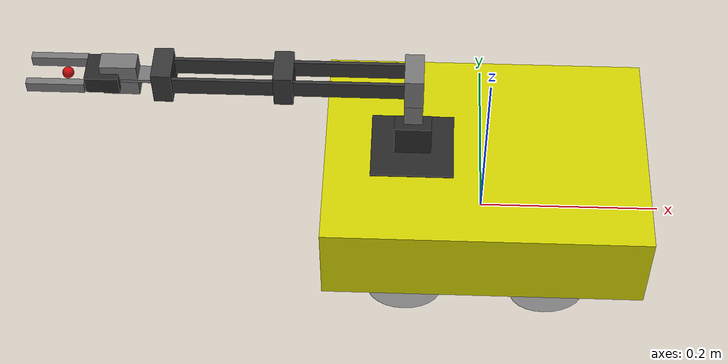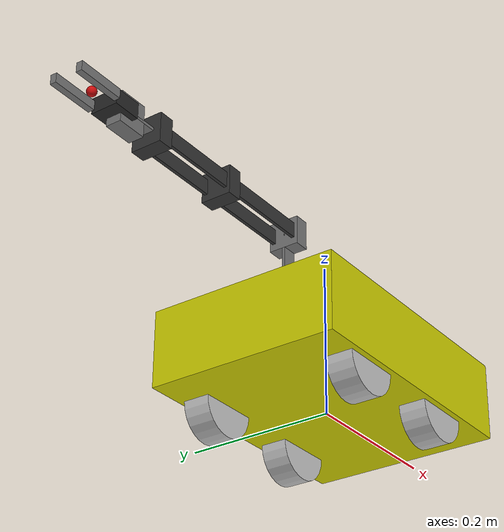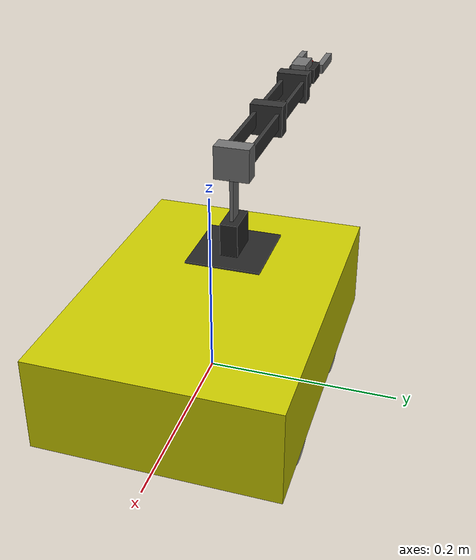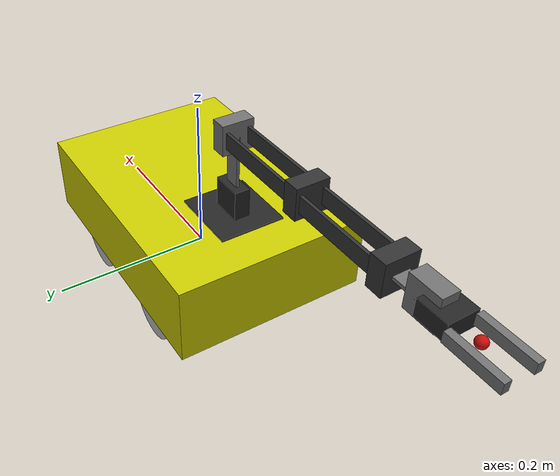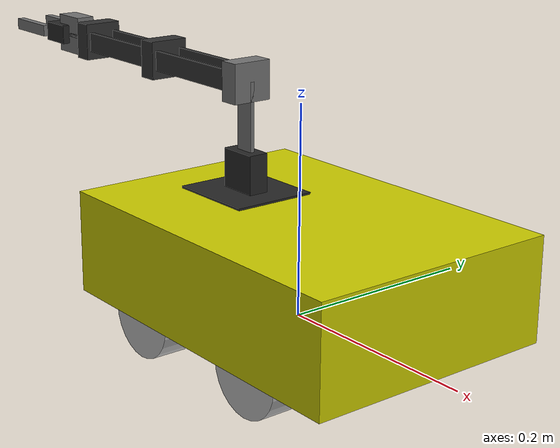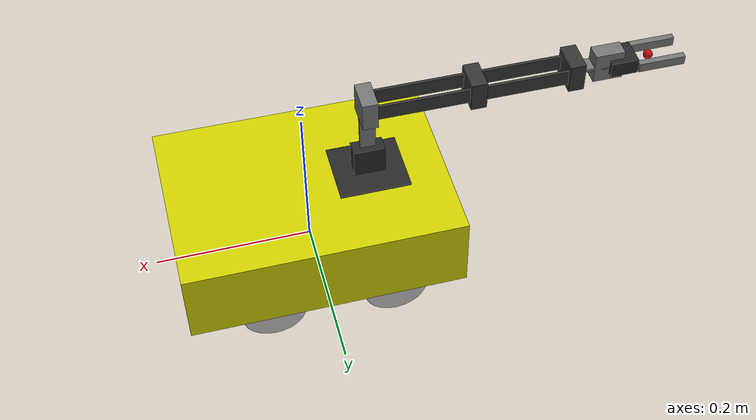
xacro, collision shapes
<?xml version="1.0"?>
<robot xmlns:xacro="http://ros.org/wiki/xacro" name="rubot_mecanum">

    <!-- ros2_control arguments -->
    <xacro:arg name="use_gazebo_plugin" default="true"/>
    <xacro:arg name="hardware_plugin" default="ign_ros2_control/IgnitionSystem"/>
    <xacro:arg name="ros2_control_params" default=""/>

  <xacro:include filename="$(find my_robot_description)/urdf/rubot_arm/my_arm_mecanum_5dof_macro.xacro"/>

  <xacro:my_arm_mecanum_5dof
    prefix="arm_"
    parent="base_link"
    xyz="-0.08 0.0 0.09"
    rpy="0 0 3.14159"
    hardware_plugin="$(arg hardware_plugin)"/>

    <material name="yellow">
        <color rgba="0.8 0.8 0.0 1.0"/>
    </material>
    <material name="black">
        <color rgba="0.15 0.15 0.15 1.0"/>
    </material>
    <material name="dark_grey">
        <color rgba="0.2 0.2 0.2 1.0"/>
    </material>
    <material name="light_grey">
        <color rgba="0.75 0.75 0.75 1.0"/>
    </material>
    <material name="green">
        <color rgba="0.2 0.7 0.2 1.0"/>
    </material>
    <material name="servo">
      <color rgba="0.08 0.08 0.08 1.0"/>
    </material>

    <material name="metal">
      <color rgba="0.45 0.45 0.45 1.0"/>
    </material>

    <material name="red">
      <color rgba="0.80 0.05 0.05 1.0"/>
    </material>

  <!-- ===== Frames base ===== -->
  <link name="base_footprint"/>

  <link name="base_link">
    <!-- Visual (per RViz) -->
    <visual>
      <origin xyz="0 0 0" rpy="0 0 0"/>
      <geometry>
        <mesh filename="package://my_robot_description/meshes/rubot/base_link.stl"
              scale="0.001 0.001 0.001"/>
      </geometry>
      <material name="yellow"/>
    </visual>

    <!-- Collision (per costmaps si vols usar robot footprint/voxel amb robot model) -->
    <collision>
      <origin xyz="0 0 0.05" rpy="0 0 0"/>
      <geometry>
        <box size="0.35 0.25 0.10"/>
      </geometry>
    </collision>
    <!-- Needed Inertia -->
    <inertial>
        <origin xyz="0 0 0.02" rpy="0 0 0"/>
        <mass value="3.0"/>
        <inertia
            ixx="0.03"
            ixy="0.0"
            ixz="0.0"
            iyy="0.08"
            iyz="0.0"
            izz="0.05"/>
    </inertial>
  </link>

  <joint name="base_footprint_joint" type="fixed">
    <parent link="base_footprint"/>
    <child link="base_link"/>
    <origin xyz="0 0 0" rpy="0 0 0"/>
  </joint>

  <!-- ===== Rodes (només visuals, fixed) ===== -->
  <joint name="upper_left_wheel_joint" type="fixed">
    <parent link="base_link"/>
    <child link="upper_left_wheel"/>
    <origin xyz="0.07 0.10 0.00" rpy="0 0 0"/>
  </joint>
  <link name="upper_left_wheel">
    <visual>
      <geometry>
        <mesh filename="package://my_robot_description/meshes/rubot/upper_left_wheel.stl"
              scale="0.001 0.001 0.001"/>
      </geometry>
      <material name="light_grey"/>
    </visual>
    <collision>
        <origin xyz="0 0 0" rpy="1.5708 0 0"/>
        <geometry>
            <cylinder radius="0.04" length="0.035"/>
        </geometry>
    </collision>
    <inertial>
        <mass value="0.05"/>
        <inertia
            ixx="0.00003"
            ixy="0.0"
            ixz="0.0"
            iyy="0.00003"
            iyz="0.0"
            izz="0.00004"/>
    </inertial>
  </link>

  <joint name="lower_left_wheel_joint" type="fixed">
    <parent link="base_link"/>
    <child link="lower_left_wheel"/>
    <origin xyz="-0.085 0.10 0.00" rpy="0 0 0"/>
  </joint>
  <link name="lower_left_wheel">
    <visual>
      <geometry>
        <mesh filename="package://my_robot_description/meshes/rubot/lower_left_wheel.stl"
              scale="0.001 0.001 0.001"/>
      </geometry>
      <material name="light_grey"/>
    </visual>
    <collision>
        <origin xyz="0 0 0" rpy="1.5708 0 0"/>
        <geometry>
            <cylinder radius="0.04" length="0.035"/>
        </geometry>
    </collision>
    <inertial>
        <mass value="0.05"/>
        <inertia
            ixx="0.00003"
            ixy="0.0"
            ixz="0.0"
            iyy="0.00003"
            iyz="0.0"
            izz="0.00004"/>
    </inertial>
  </link>

  <joint name="upper_right_wheel_joint" type="fixed">
    <parent link="base_link"/>
    <child link="upper_right_wheel"/>
    <origin xyz="0.07 -0.10 0.00" rpy="0 0 3.14159"/>
  </joint>
  <link name="upper_right_wheel">
    <visual>
      <geometry>
        <mesh filename="package://my_robot_description/meshes/rubot/upper_right_wheel.stl"
              scale="0.001 0.001 0.001"/>
      </geometry>
      <material name="light_grey"/>
    </visual>
    <collision>
        <origin xyz="0 0 0" rpy="1.5708 0 0"/>
        <geometry>
            <cylinder radius="0.04" length="0.035"/>
        </geometry>
    </collision>
    <inertial>
        <mass value="0.05"/>
        <inertia
            ixx="0.00003"
            ixy="0.0"
            ixz="0.0"
            iyy="0.00003"
            iyz="0.0"
            izz="0.00004"/>
    </inertial>
  </link>

  <joint name="lower_right_wheel_joint" type="fixed">
    <parent link="base_link"/>
    <child link="lower_right_wheel"/>
    <origin xyz="-0.085 -0.10 0.00" rpy="0 0 3.14159"/>
  </joint>
  <link name="lower_right_wheel">
    <visual>
      <geometry>
        <mesh filename="package://my_robot_description/meshes/rubot/lower_right_wheel.stl"
              scale="0.001 0.001 0.001"/>
      </geometry>
      <material name="light_grey"/>
    </visual>
    <collision>
        <origin xyz="0 0 0" rpy="1.5708 0 0"/>
        <geometry>
            <cylinder radius="0.04" length="0.035"/>
        </geometry>
    </collision>
    <inertial>
        <mass value="0.05"/>
        <inertia
            ixx="0.00003"
            ixy="0.0"
            ixz="0.0"
            iyy="0.00003"
            iyz="0.0"
            izz="0.00004"/>
    </inertial>
  </link>

  <!-- ===== Lidar frame ===== -->
  <joint name="base_scan_joint" type="fixed">
    <parent link="base_link"/>
    <child link="base_scan"/>
    <origin xyz="0 0 0.14" rpy="0 0 0"/>
  </joint>
  <link name="base_scan">
    <visual>
      <origin rpy="0 0 0" xyz="0 0 0"/>
      <geometry>
        <mesh filename="package://my_robot_description/meshes/rubot/Lidar.stl" scale="0.001 0.001 0.001"/>
      </geometry>
      <material name="black"/>
    </visual>
  </link>

  <!-- ===== Camera frame ===== -->
  <joint name="camera_joint" type="fixed">
    <parent link="base_link"/>
    <child link="camera"/>
    <origin xyz="0.13 0 0.08" rpy="0 0 0"/>
  </joint>
  <link name="camera">
    <visual>
        <origin rpy="0 0 0" xyz="0 0 0"/>
        <geometry>
            <box size="0.025 0.05 0.025"/>
        </geometry>
        <material name="green"/>
    </visual>
  </link>

    <!-- =========================
        Gazebo plugins
        ========================= -->

    <gazebo>
    <!-- Holonomic / planar velocity control -->
    <plugin filename="libignition-gazebo6-velocity-control-system.so"
            name="ignition::gazebo::systems::VelocityControl">
        <topic>/cmd_vel</topic>
    </plugin>

    <!-- Odometry publisher -->
    <plugin filename="libignition-gazebo6-odometry-publisher-system.so"
            name="ignition::gazebo::systems::OdometryPublisher">
        <odom_frame>odom</odom_frame>
        <robot_base_frame>base_footprint</robot_base_frame>
        <odom_topic>/odom</odom_topic>
        <tf_topic>/tf</tf_topic>
        <odom_publish_frequency>50</odom_publish_frequency>
    </plugin>
    </gazebo>

    <!-- =========================
     Gazebo lidar sensor
     ========================= -->
    <gazebo reference="base_scan">
        <sensor name="lidar" type="gpu_lidar">
            <pose>0 0 0 0 0 0</pose>
            <topic>/scan</topic>
            <update_rate>10</update_rate>
            <ray>
            <scan>
                <horizontal>
                <samples>360</samples>
                <resolution>1</resolution>
                <min_angle>-2.3</min_angle>
                <max_angle>2.3</max_angle>
                </horizontal>
            </scan>
            <range>
                <min>0.12</min>
                <max>10.0</max>
                <resolution>0.01</resolution>
            </range>
            </ray>
            <always_on>true</always_on>
            <visualize>false</visualize>
        </sensor>
    </gazebo>

    <!-- =========================
        Gazebo RGBD camera sensor
        ========================= -->
    <gazebo reference="camera">
        <sensor name="rgbd_camera" type="rgbd_camera">
            <pose>0 0 0 0 0 0</pose>
            <topic>/camera</topic>
            <update_rate>15</update_rate>
            <camera>
            <horizontal_fov>1.047</horizontal_fov>
            <image>
                <width>320</width>
                <height>240</height>
                <format>R8G8B8</format>
            </image>
            <clip>
                <near>0.05</near>
                <far>10.0</far>
            </clip>
            </camera>
            <always_on>true</always_on>
            <visualize>false</visualize>
        </sensor>
    </gazebo>

    <xacro:if value="$(arg use_gazebo_plugin)">
        <gazebo>
            <plugin
            name="ign_ros2_control::IgnitionROS2ControlPlugin"
            filename="libign_ros2_control-system.so">
            <parameters>$(arg ros2_control_params)</parameters>
            </plugin>
        </gazebo>
    </xacro:if>
</robot>

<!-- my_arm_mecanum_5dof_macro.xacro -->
<robot xmlns:xacro="http://ros.org/wiki/xacro">

  <!-- Reusable helper macros                                            -->

  <xacro:macro name="arm_inertial_box" params="mass x y z ox:=0 oy:=0 oz:=0">
    <inertial>
      <origin xyz="${ox} ${oy} ${oz}" rpy="0 0 0"/>
      <mass value="${mass}"/>
      <inertia
        ixx="${mass * (y*y + z*z) / 12.0}"
        ixy="0.0"
        ixz="0.0"
        iyy="${mass * (x*x + z*z) / 12.0}"
        iyz="0.0"
        izz="${mass * (x*x + y*y) / 12.0}"/>
    </inertial>
  </xacro:macro>

  <xacro:macro
    name="arm_box_visual_collision"
    params="name x y z ox oy oz material">

    <visual name="${name}_visual">
      <origin xyz="${ox} ${oy} ${oz}" rpy="0 0 0"/>
      <geometry>
        <box size="${x} ${y} ${z}"/>
      </geometry>
      <material name="${material}"/>
    </visual>

    <collision name="${name}_collision">
      <origin xyz="${ox} ${oy} ${oz}" rpy="0 0 0"/>
      <geometry>
        <box size="${x} ${y} ${z}"/>
      </geometry>
    </collision>
  </xacro:macro>

  <!-- Arm macro                                                         -->

  <xacro:macro
    name="my_arm_mecanum_5dof"
    params="
      prefix
      parent
      xyz:='0 0 0'
      rpy:='0 0 0'
      hardware_plugin:='fake_components/GenericSystem'
    ">

    <!-- Main dimensions -->
    <xacro:property name="base_x" value="0.090"/>
    <xacro:property name="base_y" value="0.084"/>
    <xacro:property name="base_z" value="0.012"/>

    <xacro:property name="L1" value="0.105"/>
    <xacro:property name="L2" value="0.135"/>
    <xacro:property name="L3" value="0.125"/>
    <xacro:property name="L4" value="0.045"/>
    <xacro:property name="tool_x" value="0.055"/>

    <!-- Visual dimensions -->
    <xacro:property name="servo_x" value="0.040"/>
    <xacro:property name="servo_y" value="0.020"/>
    <xacro:property name="servo_z" value="0.038"/>
    <xacro:property name="plate_t" value="0.004"/>
    <xacro:property name="link_w" value="0.020"/>
    <xacro:property name="finger_l" value="0.060"/>

    <!-- Mount the arm on the robot -->
    <joint name="${prefix}mount_joint" type="fixed">
      <parent link="${parent}"/>
      <child link="${prefix}base_link"/>
      <origin xyz="${xyz}" rpy="${rpy}"/>
    </joint>

    <!-- Links                                                          -->

    <link name="${prefix}base_link">
      <xacro:arm_box_visual_collision
        name="${prefix}base_plate"
        x="${base_x}"
        y="${base_y}"
        z="${base_z}"
        ox="0"
        oy="0"
        oz="${base_z / 2.0}"
        material="black"/>

      <visual name="${prefix}base_servo_visual">
        <origin xyz="0 0 ${base_z + servo_z / 2.0}" rpy="0 0 0"/>
        <geometry>
          <box size="${servo_x} ${servo_y} ${servo_z}"/>
        </geometry>
        <material name="servo"/>
      </visual>

      <collision name="${prefix}base_servo_collision">
        <origin xyz="0 0 ${base_z + servo_z / 2.0}" rpy="0 0 0"/>
        <geometry>
          <box size="${servo_x} ${servo_y} ${servo_z}"/>
        </geometry>
      </collision>

      <xacro:arm_inertial_box
        mass="0.18"
        x="${base_x}"
        y="${base_y}"
        z="${base_z}"
        ox="0"
        oy="0"
        oz="${base_z / 2.0}"/>
    </link>

    <link name="${prefix}link1">
      <xacro:arm_box_visual_collision
        name="${prefix}vertical_bracket"
        x="${link_w}"
        y="${plate_t}"
        z="${L1}"
        ox="0"
        oy="0"
        oz="${L1 / 2.0}"
        material="metal"/>

      <visual name="${prefix}shoulder_servo_visual">
        <origin xyz="0 0 ${L1}" rpy="0 0 0"/>
        <geometry>
          <box size="${servo_y} ${servo_x} ${servo_z}"/>
        </geometry>
        <material name="servo"/>
      </visual>

      <collision name="${prefix}shoulder_servo_collision">
        <origin xyz="0 0 ${L1}" rpy="0 0 0"/>
        <geometry>
          <box size="${servo_y} ${servo_x} ${servo_z}"/>
        </geometry>
      </collision>

      <xacro:arm_inertial_box
        mass="0.08"
        x="${link_w}"
        y="${plate_t}"
        z="${L1}"
        ox="0"
        oy="0"
        oz="${L1 / 2.0}"/>
    </link>

    <link name="${prefix}link2">
      <xacro:arm_box_visual_collision
        name="${prefix}upper_left_plate"
        x="${L2}"
        y="${plate_t}"
        z="${link_w}"
        ox="${L2 / 2.0}"
        oy="0.014"
        oz="0"
        material="dark_grey"/>

      <xacro:arm_box_visual_collision
        name="${prefix}upper_right_plate"
        x="${L2}"
        y="${plate_t}"
        z="${link_w}"
        ox="${L2 / 2.0}"
        oy="-0.014"
        oz="0"
        material="dark_grey"/>

      <visual name="${prefix}elbow_servo_visual">
        <origin xyz="${L2} 0 0" rpy="0 0 0"/>
        <geometry>
          <box size="${servo_y} ${servo_x} ${servo_z}"/>
        </geometry>
        <material name="servo"/>
      </visual>

      <collision name="${prefix}elbow_servo_collision">
        <origin xyz="${L2} 0 0" rpy="0 0 0"/>
        <geometry>
          <box size="${servo_y} ${servo_x} ${servo_z}"/>
        </geometry>
      </collision>

      <xacro:arm_inertial_box
        mass="0.09"
        x="${L2}"
        y="0.032"
        z="${link_w}"
        ox="${L2 / 2.0}"
        oy="0"
        oz="0"/>
    </link>

    <link name="${prefix}link3">
      <xacro:arm_box_visual_collision
        name="${prefix}forearm_left_plate"
        x="${L3}"
        y="${plate_t}"
        z="${link_w}"
        ox="${L3 / 2.0}"
        oy="0.014"
        oz="0"
        material="dark_grey"/>

      <xacro:arm_box_visual_collision
        name="${prefix}forearm_right_plate"
        x="${L3}"
        y="${plate_t}"
        z="${link_w}"
        ox="${L3 / 2.0}"
        oy="-0.014"
        oz="0"
        material="dark_grey"/>

      <visual name="${prefix}wrist_pitch_servo_visual">
        <origin xyz="${L3} 0 0" rpy="0 0 0"/>
        <geometry>
          <box size="${servo_y} ${servo_x} ${servo_z}"/>
        </geometry>
        <material name="servo"/>
      </visual>

      <collision name="${prefix}wrist_pitch_servo_collision">
        <origin xyz="${L3} 0 0" rpy="0 0 0"/>
        <geometry>
          <box size="${servo_y} ${servo_x} ${servo_z}"/>
        </geometry>
      </collision>

      <xacro:arm_inertial_box
        mass="0.08"
        x="${L3}"
        y="0.032"
        z="${link_w}"
        ox="${L3 / 2.0}"
        oy="0"
        oz="0"/>
    </link>

    <link name="${prefix}link4">
      <xacro:arm_box_visual_collision
        name="${prefix}wrist_support"
        x="${L4}"
        y="${link_w}"
        z="${plate_t}"
        ox="${L4 / 2.0}"
        oy="0"
        oz="0"
        material="metal"/>

      <visual name="${prefix}wrist_roll_servo_visual">
        <origin xyz="${L4} 0 0" rpy="0 0 0"/>
        <geometry>
          <box size="${servo_z} ${servo_y} ${servo_x}"/>
        </geometry>
        <material name="servo"/>
      </visual>

      <collision name="${prefix}wrist_roll_servo_collision">
        <origin xyz="${L4} 0 0" rpy="0 0 0"/>
        <geometry>
          <box size="${servo_z} ${servo_y} ${servo_x}"/>
        </geometry>
      </collision>

      <xacro:arm_inertial_box
        mass="0.05"
        x="${L4}"
        y="${link_w}"
        z="${plate_t}"
        ox="${L4 / 2.0}"
        oy="0"
        oz="0"/>
    </link>

    <link name="${prefix}link5">
      <xacro:arm_box_visual_collision
        name="${prefix}gripper_palm"
        x="0.035"
        y="0.035"
        z="0.020"
        ox="0.0175"
        oy="0"
        oz="0"
        material="black"/>

      <xacro:arm_inertial_box
        mass="0.04"
        x="0.035"
        y="0.035"
        z="0.020"
        ox="0.0175"
        oy="0"
        oz="0"/>
    </link>

    <!-- Moving gripper finger -->
    <link name="${prefix}link6">
      <visual name="${prefix}left_finger_visual">
        <origin xyz="${finger_l / 2.0} 0.018 0" rpy="0 0 0"/>
        <geometry>
          <box size="${finger_l} 0.008 0.012"/>
        </geometry>
        <material name="metal"/>
      </visual>

      <collision name="${prefix}left_finger_collision">
        <origin xyz="${finger_l / 2.0} 0.018 0" rpy="0 0 0"/>
        <geometry>
          <box size="${finger_l} 0.008 0.012"/>
        </geometry>
      </collision>

      <xacro:arm_inertial_box
        mass="0.01"
        x="${finger_l}"
        y="0.008"
        z="0.012"
        ox="${finger_l / 2.0}"
        oy="0.018"
        oz="0"/>
    </link>

    <!-- Fixed gripper finger -->
    <link name="${prefix}link6_right">
      <visual name="${prefix}right_finger_visual">
        <origin xyz="${finger_l / 2.0} -0.018 0" rpy="0 0 0"/>
        <geometry>
          <box size="${finger_l} 0.008 0.012"/>
        </geometry>
        <material name="metal"/>
      </visual>

      <collision name="${prefix}right_finger_collision">
        <origin xyz="${finger_l / 2.0} -0.018 0" rpy="0 0 0"/>
        <geometry>
          <box size="${finger_l} 0.008 0.012"/>
        </geometry>
      </collision>

      <xacro:arm_inertial_box
        mass="0.01"
        x="${finger_l}"
        y="0.008"
        z="0.012"
        ox="${finger_l / 2.0}"
        oy="-0.018"
        oz="0"/>
    </link>

    <!-- TCP frame -->
    <link name="${prefix}tool">
      <visual>
        <geometry>
          <sphere radius="0.006"/>
        </geometry>
        <material name="red"/>
      </visual>

      <collision>
        <geometry>
          <sphere radius="0.006"/>
        </geometry>
      </collision>

      <xacro:arm_inertial_box
        mass="0.001"
        x="0.006"
        y="0.006"
        z="0.006"/>
    </link>

    <!-- Joints                                                         -->

    <joint name="${prefix}joint1" type="revolute">
      <parent link="${prefix}base_link"/>
      <child link="${prefix}link1"/>
      <origin xyz="0 0 ${base_z}" rpy="0 0 0"/>
      <axis xyz="0 0 1"/>
      <limit lower="-1.5708" upper="1.5708" effort="1.0" velocity="1.0"/>
    </joint>

    <joint name="${prefix}joint2" type="revolute">
      <parent link="${prefix}link1"/>
      <child link="${prefix}link2"/>
      <origin xyz="0 0 ${L1}" rpy="0 0 0"/>
      <axis xyz="0 1 0"/>
      <limit lower="-1.5708" upper="1.5708" effort="1.0" velocity="1.0"/>
    </joint>

    <joint name="${prefix}joint3" type="revolute">
      <parent link="${prefix}link2"/>
      <child link="${prefix}link3"/>
      <origin xyz="${L2} 0 0" rpy="0 0 0"/>
      <axis xyz="0 1 0"/>
      <limit lower="-1.5708" upper="1.5708" effort="1.0" velocity="1.0"/>
    </joint>

    <joint name="${prefix}joint4" type="revolute">
      <parent link="${prefix}link3"/>
      <child link="${prefix}link4"/>
      <origin xyz="${L3} 0 0" rpy="0 0 0"/>
      <axis xyz="0 1 0"/>
      <limit lower="-1.5708" upper="1.5708" effort="1.0" velocity="1.0"/>
    </joint>

    <joint name="${prefix}joint5" type="revolute">
      <parent link="${prefix}link4"/>
      <child link="${prefix}link5"/>
      <origin xyz="${L4} 0 0" rpy="0 0 0"/>
      <axis xyz="1 0 0"/>
      <limit lower="-1.5708" upper="1.5708" effort="1.0" velocity="1.0"/>
    </joint>

    <!-- Angular gripper servo -->
    <joint name="${prefix}joint6" type="revolute">
      <parent link="${prefix}link5"/>
      <child link="${prefix}link6"/>
      <origin xyz="0.035 0 0" rpy="0 0 0"/>
      <axis xyz="0 0 1"/>
      <limit lower="0.0" upper="0.7854" effort="0.5" velocity="1.0"/>
    </joint>

    <joint name="${prefix}joint6_right" type="fixed">
      <parent link="${prefix}link5"/>
      <child link="${prefix}link6_right"/>
      <origin xyz="0.035 0 0" rpy="0 0 0"/>
    </joint>

    <joint name="${prefix}link5_to_tool" type="fixed">
      <parent link="${prefix}link5"/>
      <child link="${prefix}tool"/>
      <origin xyz="${tool_x} 0 0" rpy="0 0 0"/>
    </joint>

    <!-- ros2_control                                                   -->

    <ros2_control name="${prefix}MecanumArmSystem" type="system">
      <hardware>
        <plugin>${hardware_plugin}</plugin>
        <param name="position_proportional_gain">0.1</param>
      </hardware>

      <joint name="${prefix}joint1">
        <command_interface name="position"/>
        <state_interface name="position"/>
        <state_interface name="velocity"/>
      </joint>

      <joint name="${prefix}joint2">
        <command_interface name="position"/>
        <state_interface name="position"/>
        <state_interface name="velocity"/>
      </joint>

      <joint name="${prefix}joint3">
        <command_interface name="position"/>
        <state_interface name="position"/>
        <state_interface name="velocity"/>
      </joint>

      <joint name="${prefix}joint4">
        <command_interface name="position"/>
        <state_interface name="position"/>
        <state_interface name="velocity"/>
      </joint>

      <joint name="${prefix}joint5">
        <command_interface name="position"/>
        <state_interface name="position"/>
        <state_interface name="velocity"/>
      </joint>

      <joint name="${prefix}joint6">
        <command_interface name="position"/>
        <state_interface name="position"/>
        <state_interface name="velocity"/>
      </joint>
    </ros2_control>

  </xacro:macro>

</robot>
